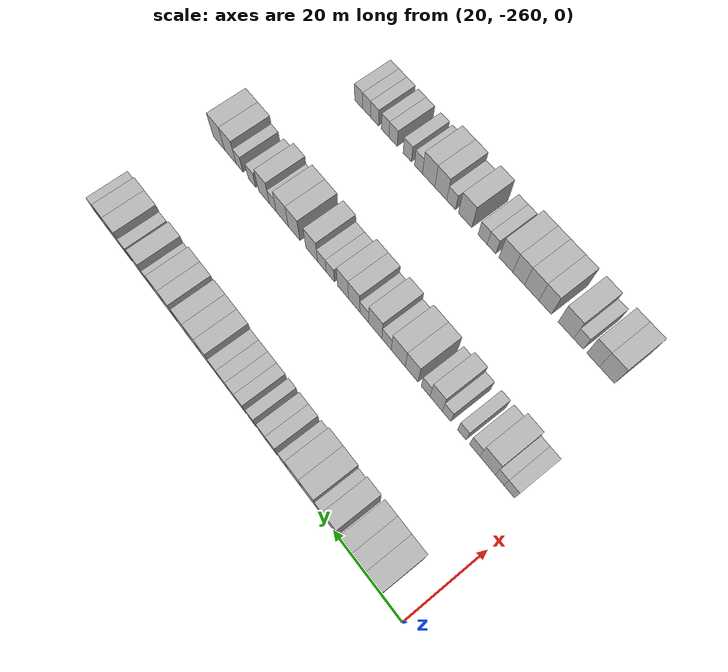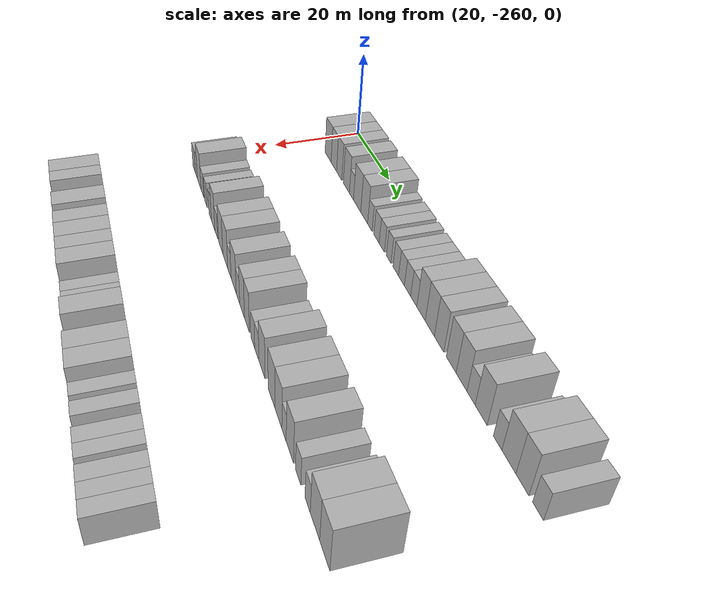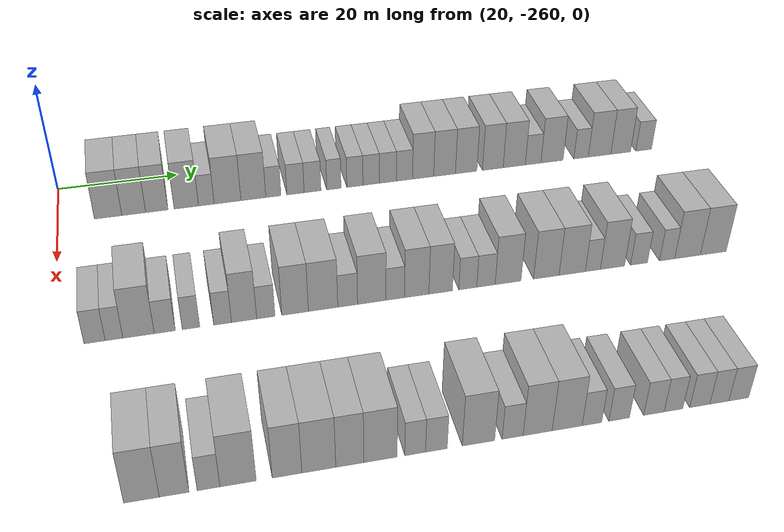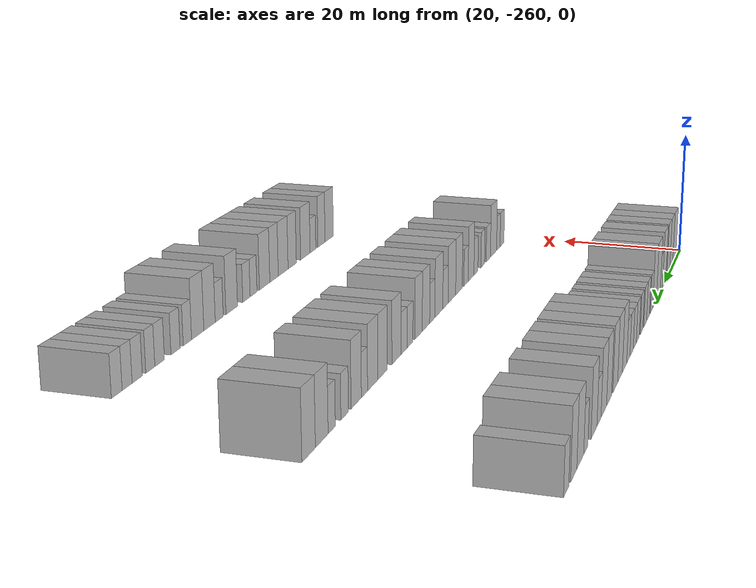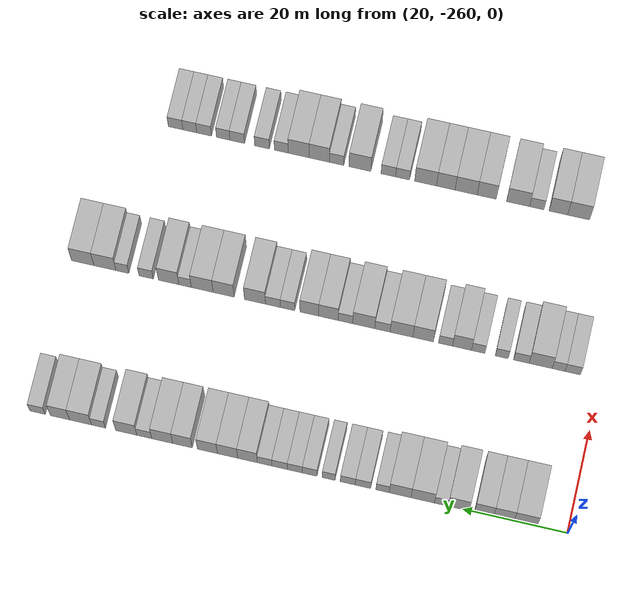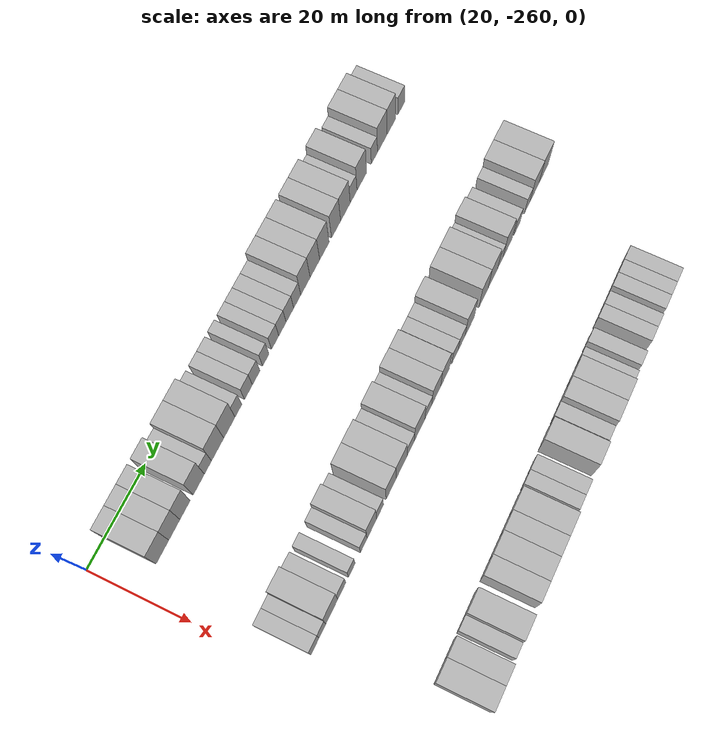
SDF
<sdf version="1.6">
 <world name="default">
  <model name="building_51">
   <static>1</static>
   <pose>25.0000 -251.9314 0 0.000000 0.000000 0.000000</pose>
   <link name="link">
    <pose>0 0 4.50 0 0 0</pose>
    <collision name="collision"><geometry><box><size>10.0000 4.3995 9.0000</size></box></geometry></collision>
    <visual name="visual">
     <cast_shadows>0</cast_shadows>
     <geometry><box><size>10.0000 4.3995 9.0000</size></box></geometry>
     <material>
      <script>
       <uri>model://HANNAS_wall/materials/scripts</uri>
       <uri>model://HANNAS_wall/materials/textures</uri>
       <name>vrc/HANNAS_wall</name>
      </script>
     </material>
    </visual>
   </link>
  </model>
  <model name="building_52">
   <static>1</static>
   <pose>25.0000 -247.8007 0 0.000000 0.000000 0.000000</pose>
   <link name="link">
    <pose>0 0 4.50 0 0 0</pose>
    <collision name="collision"><geometry><box><size>10.0000 3.8619 9.0000</size></box></geometry></collision>
    <visual name="visual">
     <cast_shadows>0</cast_shadows>
     <geometry><box><size>10.0000 3.8619 9.0000</size></box></geometry>
     <material>
      <script>
       <uri>model://HANNAS_wall/materials/scripts</uri>
       <uri>model://HANNAS_wall/materials/textures</uri>
       <name>vrc/HANNAS_wall</name>
      </script>
     </material>
    </visual>
   </link>
  </model>
  <model name="building_53">
   <static>1</static>
   <pose>25.0000 -244.0555 0 0.000000 0.000000 0.000000</pose>
   <link name="link">
    <pose>0 0 4.50 0 0 0</pose>
    <collision name="collision"><geometry><box><size>10.0000 3.6285 9.0000</size></box></geometry></collision>
    <visual name="visual">
     <cast_shadows>0</cast_shadows>
     <geometry><box><size>10.0000 3.6285 9.0000</size></box></geometry>
     <material>
      <script>
       <uri>model://HANNAS_wall/materials/scripts</uri>
       <uri>model://HANNAS_wall/materials/textures</uri>
       <name>vrc/HANNAS_wall</name>
      </script>
     </material>
    </visual>
   </link>
  </model>
  <model name="building_54">
   <static>1</static>
   <pose>25.0000 -239.2347 0 0.000000 0.000000 0.000000</pose>
   <link name="link">
    <pose>0 0 4.50 0 0 0</pose>
    <collision name="collision"><geometry><box><size>10.0000 4.0131 9.0000</size></box></geometry></collision>
    <visual name="visual">
     <cast_shadows>0</cast_shadows>
     <geometry><box><size>10.0000 4.0131 9.0000</size></box></geometry>
     <material>
      <script>
       <uri>model://HANNAS_wall/materials/scripts</uri>
       <uri>model://HANNAS_wall/materials/textures</uri>
       <name>vrc/HANNAS_wall</name>
      </script>
     </material>
    </visual>
   </link>
  </model>
  <model name="building_55">
   <static>1</static>
   <pose>25.0000 -235.9422 0 0.000000 0.000000 0.000000</pose>
   <link name="link">
    <pose>0 0 3.00 0 0 0</pose>
    <collision name="collision"><geometry><box><size>10.0000 2.5717 6.0000</size></box></geometry></collision>
    <visual name="visual">
     <cast_shadows>0</cast_shadows>
     <geometry><box><size>10.0000 2.5717 6.0000</size></box></geometry>
     <material>
      <script>
       <uri>model://HANNAS_wall/materials/scripts</uri>
       <uri>model://HANNAS_wall/materials/textures</uri>
       <name>vrc/HANNAS_wall</name>
      </script>
     </material>
    </visual>
   </link>
  </model>
  <model name="building_56">
   <static>1</static>
   <pose>25.0000 -232.4323 0 0.000000 0.000000 0.000000</pose>
   <link name="link">
    <pose>0 0 4.50 0 0 0</pose>
    <collision name="collision"><geometry><box><size>10.0000 4.4481 9.0000</size></box></geometry></collision>
    <visual name="visual">
     <cast_shadows>0</cast_shadows>
     <geometry><box><size>10.0000 4.4481 9.0000</size></box></geometry>
     <material>
      <script>
       <uri>model://HANNAS_wall/materials/scripts</uri>
       <uri>model://HANNAS_wall/materials/textures</uri>
       <name>vrc/HANNAS_wall</name>
      </script>
     </material>
    </visual>
   </link>
  </model>
  <model name="building_57">
   <static>1</static>
   <pose>25.0000 -228.1251 0 0.000000 0.000000 0.000000</pose>
   <link name="link">
    <pose>0 0 4.50 0 0 0</pose>
    <collision name="collision"><geometry><box><size>10.0000 4.1664 9.0000</size></box></geometry></collision>
    <visual name="visual">
     <cast_shadows>0</cast_shadows>
     <geometry><box><size>10.0000 4.1664 9.0000</size></box></geometry>
     <material>
      <script>
       <uri>model://HANNAS_wall/materials/scripts</uri>
       <uri>model://HANNAS_wall/materials/textures</uri>
       <name>vrc/HANNAS_wall</name>
      </script>
     </material>
    </visual>
   </link>
  </model>
  <model name="building_58">
   <static>1</static>
   <pose>25.0000 -224.7639 0 0.000000 0.000000 0.000000</pose>
   <link name="link">
    <pose>0 0 3.00 0 0 0</pose>
    <collision name="collision"><geometry><box><size>10.0000 2.5559 6.0000</size></box></geometry></collision>
    <visual name="visual">
     <cast_shadows>0</cast_shadows>
     <geometry><box><size>10.0000 2.5559 6.0000</size></box></geometry>
     <material>
      <script>
       <uri>model://HANNAS_wall/materials/scripts</uri>
       <uri>model://HANNAS_wall/materials/textures</uri>
       <name>vrc/HANNAS_wall</name>
      </script>
     </material>
    </visual>
   </link>
  </model>
  <model name="building_59">
   <static>1</static>
   <pose>25.0000 -221.0248 0 0.000000 0.000000 0.000000</pose>
   <link name="link">
    <pose>0 0 3.00 0 0 0</pose>
    <collision name="collision"><geometry><box><size>10.0000 2.9223 6.0000</size></box></geometry></collision>
    <visual name="visual">
     <cast_shadows>0</cast_shadows>
     <geometry><box><size>10.0000 2.9223 6.0000</size></box></geometry>
     <material>
      <script>
       <uri>model://HANNAS_wall/materials/scripts</uri>
       <uri>model://HANNAS_wall/materials/textures</uri>
       <name>vrc/HANNAS_wall</name>
      </script>
     </material>
    </visual>
   </link>
  </model>
  <model name="building_60">
   <static>1</static>
   <pose>25.0000 -218.1288 0 0.000000 0.000000 0.000000</pose>
   <link name="link">
    <pose>0 0 3.00 0 0 0</pose>
    <collision name="collision"><geometry><box><size>10.0000 2.8697 6.0000</size></box></geometry></collision>
    <visual name="visual">
     <cast_shadows>0</cast_shadows>
     <geometry><box><size>10.0000 2.8697 6.0000</size></box></geometry>
     <material>
      <script>
       <uri>model://HANNAS_wall/materials/scripts</uri>
       <uri>model://HANNAS_wall/materials/textures</uri>
       <name>vrc/HANNAS_wall</name>
      </script>
     </material>
    </visual>
   </link>
  </model>
  <model name="building_61">
   <static>1</static>
   <pose>25.0000 -214.4741 0 0.000000 0.000000 0.000000</pose>
   <link name="link">
    <pose>0 0 3.00 0 0 0</pose>
    <collision name="collision"><geometry><box><size>10.0000 2.4396 6.0000</size></box></geometry></collision>
    <visual name="visual">
     <cast_shadows>0</cast_shadows>
     <geometry><box><size>10.0000 2.4396 6.0000</size></box></geometry>
     <material>
      <script>
       <uri>model://HANNAS_wall/materials/scripts</uri>
       <uri>model://HANNAS_wall/materials/textures</uri>
       <name>vrc/HANNAS_wall</name>
      </script>
     </material>
    </visual>
   </link>
  </model>
  <model name="building_62">
   <static>1</static>
   <pose>25.0000 -210.8587 0 0.000000 0.000000 0.000000</pose>
   <link name="link">
    <pose>0 0 3.00 0 0 0</pose>
    <collision name="collision"><geometry><box><size>10.0000 2.7912 6.0000</size></box></geometry></collision>
    <visual name="visual">
     <cast_shadows>0</cast_shadows>
     <geometry><box><size>10.0000 2.7912 6.0000</size></box></geometry>
     <material>
      <script>
       <uri>model://HANNAS_wall/materials/scripts</uri>
       <uri>model://HANNAS_wall/materials/textures</uri>
       <name>vrc/HANNAS_wall</name>
      </script>
     </material>
    </visual>
   </link>
  </model>
  <model name="building_63">
   <static>1</static>
   <pose>25.0000 -208.0365 0 0.000000 0.000000 0.000000</pose>
   <link name="link">
    <pose>0 0 3.00 0 0 0</pose>
    <collision name="collision"><geometry><box><size>10.0000 2.8532 6.0000</size></box></geometry></collision>
    <visual name="visual">
     <cast_shadows>0</cast_shadows>
     <geometry><box><size>10.0000 2.8532 6.0000</size></box></geometry>
     <material>
      <script>
       <uri>model://HANNAS_wall/materials/scripts</uri>
       <uri>model://HANNAS_wall/materials/textures</uri>
       <name>vrc/HANNAS_wall</name>
      </script>
     </material>
    </visual>
   </link>
  </model>
  <model name="building_64">
   <static>1</static>
   <pose>25.0000 -205.1296 0 0.000000 0.000000 0.000000</pose>
   <link name="link">
    <pose>0 0 3.00 0 0 0</pose>
    <collision name="collision"><geometry><box><size>10.0000 2.9607 6.0000</size></box></geometry></collision>
    <visual name="visual">
     <cast_shadows>0</cast_shadows>
     <geometry><box><size>10.0000 2.9607 6.0000</size></box></geometry>
     <material>
      <script>
       <uri>model://HANNAS_wall/materials/scripts</uri>
       <uri>model://HANNAS_wall/materials/textures</uri>
       <name>vrc/HANNAS_wall</name>
      </script>
     </material>
    </visual>
   </link>
  </model>
  <model name="building_65">
   <static>1</static>
   <pose>25.0000 -202.2371 0 0.000000 0.000000 0.000000</pose>
   <link name="link">
    <pose>0 0 3.00 0 0 0</pose>
    <collision name="collision"><geometry><box><size>10.0000 2.8243 6.0000</size></box></geometry></collision>
    <visual name="visual">
     <cast_shadows>0</cast_shadows>
     <geometry><box><size>10.0000 2.8243 6.0000</size></box></geometry>
     <material>
      <script>
       <uri>model://HANNAS_wall/materials/scripts</uri>
       <uri>model://HANNAS_wall/materials/textures</uri>
       <name>vrc/HANNAS_wall</name>
      </script>
     </material>
    </visual>
   </link>
  </model>
  <model name="building_66">
   <static>1</static>
   <pose>25.0000 -198.9502 0 0.000000 0.000000 0.000000</pose>
   <link name="link">
    <pose>0 0 4.50 0 0 0</pose>
    <collision name="collision"><geometry><box><size>10.0000 3.7495 9.0000</size></box></geometry></collision>
    <visual name="visual">
     <cast_shadows>0</cast_shadows>
     <geometry><box><size>10.0000 3.7495 9.0000</size></box></geometry>
     <material>
      <script>
       <uri>model://HANNAS_wall/materials/scripts</uri>
       <uri>model://HANNAS_wall/materials/textures</uri>
       <name>vrc/HANNAS_wall</name>
      </script>
     </material>
    </visual>
   </link>
  </model>
  <model name="building_67">
   <static>1</static>
   <pose>25.0000 -195.1428 0 0.000000 0.000000 0.000000</pose>
   <link name="link">
    <pose>0 0 4.50 0 0 0</pose>
    <collision name="collision"><geometry><box><size>10.0000 3.8651 9.0000</size></box></geometry></collision>
    <visual name="visual">
     <cast_shadows>0</cast_shadows>
     <geometry><box><size>10.0000 3.8651 9.0000</size></box></geometry>
     <material>
      <script>
       <uri>model://HANNAS_wall/materials/scripts</uri>
       <uri>model://HANNAS_wall/materials/textures</uri>
       <name>vrc/HANNAS_wall</name>
      </script>
     </material>
    </visual>
   </link>
  </model>
  <model name="building_68">
   <static>1</static>
   <pose>25.0000 -191.2908 0 0.000000 0.000000 0.000000</pose>
   <link name="link">
    <pose>0 0 4.50 0 0 0</pose>
    <collision name="collision"><geometry><box><size>10.0000 3.8390 9.0000</size></box></geometry></collision>
    <visual name="visual">
     <cast_shadows>0</cast_shadows>
     <geometry><box><size>10.0000 3.8390 9.0000</size></box></geometry>
     <material>
      <script>
       <uri>model://HANNAS_wall/materials/scripts</uri>
       <uri>model://HANNAS_wall/materials/textures</uri>
       <name>vrc/HANNAS_wall</name>
      </script>
     </material>
    </visual>
   </link>
  </model>
  <model name="building_69">
   <static>1</static>
   <pose>25.0000 -186.4978 0 0.000000 0.000000 0.000000</pose>
   <link name="link">
    <pose>0 0 4.50 0 0 0</pose>
    <collision name="collision"><geometry><box><size>10.0000 3.7471 9.0000</size></box></geometry></collision>
    <visual name="visual">
     <cast_shadows>0</cast_shadows>
     <geometry><box><size>10.0000 3.7471 9.0000</size></box></geometry>
     <material>
      <script>
       <uri>model://HANNAS_wall/materials/scripts</uri>
       <uri>model://HANNAS_wall/materials/textures</uri>
       <name>vrc/HANNAS_wall</name>
      </script>
     </material>
    </visual>
   </link>
  </model>
  <model name="building_70">
   <static>1</static>
   <pose>25.0000 -182.6161 0 0.000000 0.000000 0.000000</pose>
   <link name="link">
    <pose>0 0 4.50 0 0 0</pose>
    <collision name="collision"><geometry><box><size>10.0000 4.0163 9.0000</size></box></geometry></collision>
    <visual name="visual">
     <cast_shadows>0</cast_shadows>
     <geometry><box><size>10.0000 4.0163 9.0000</size></box></geometry>
     <material>
      <script>
       <uri>model://HANNAS_wall/materials/scripts</uri>
       <uri>model://HANNAS_wall/materials/textures</uri>
       <name>vrc/HANNAS_wall</name>
      </script>
     </material>
    </visual>
   </link>
  </model>
  <model name="building_71">
   <static>1</static>
   <pose>25.0000 -179.1784 0 0.000000 0.000000 0.000000</pose>
   <link name="link">
    <pose>0 0 3.00 0 0 0</pose>
    <collision name="collision"><geometry><box><size>10.0000 2.8589 6.0000</size></box></geometry></collision>
    <visual name="visual">
     <cast_shadows>0</cast_shadows>
     <geometry><box><size>10.0000 2.8589 6.0000</size></box></geometry>
     <material>
      <script>
       <uri>model://HANNAS_wall/materials/scripts</uri>
       <uri>model://HANNAS_wall/materials/textures</uri>
       <name>vrc/HANNAS_wall</name>
      </script>
     </material>
    </visual>
   </link>
  </model>
  <model name="building_72">
   <static>1</static>
   <pose>25.0000 -175.7146 0 0.000000 0.000000 0.000000</pose>
   <link name="link">
    <pose>0 0 4.50 0 0 0</pose>
    <collision name="collision"><geometry><box><size>10.0000 4.0687 9.0000</size></box></geometry></collision>
    <visual name="visual">
     <cast_shadows>0</cast_shadows>
     <geometry><box><size>10.0000 4.0687 9.0000</size></box></geometry>
     <material>
      <script>
       <uri>model://HANNAS_wall/materials/scripts</uri>
       <uri>model://HANNAS_wall/materials/textures</uri>
       <name>vrc/HANNAS_wall</name>
      </script>
     </material>
    </visual>
   </link>
  </model>
  <model name="building_73">
   <static>1</static>
   <pose>25.0000 -170.3398 0 0.000000 0.000000 0.000000</pose>
   <link name="link">
    <pose>0 0 3.00 0 0 0</pose>
    <collision name="collision"><geometry><box><size>10.0000 2.6811 6.0000</size></box></geometry></collision>
    <visual name="visual">
     <cast_shadows>0</cast_shadows>
     <geometry><box><size>10.0000 2.6811 6.0000</size></box></geometry>
     <material>
      <script>
       <uri>model://HANNAS_wall/materials/scripts</uri>
       <uri>model://HANNAS_wall/materials/textures</uri>
       <name>vrc/HANNAS_wall</name>
      </script>
     </material>
    </visual>
   </link>
  </model>
  <model name="building_74">
   <static>1</static>
   <pose>25.0000 -166.8912 0 0.000000 0.000000 0.000000</pose>
   <link name="link">
    <pose>0 0 4.50 0 0 0</pose>
    <collision name="collision"><geometry><box><size>10.0000 4.2160 9.0000</size></box></geometry></collision>
    <visual name="visual">
     <cast_shadows>0</cast_shadows>
     <geometry><box><size>10.0000 4.2160 9.0000</size></box></geometry>
     <material>
      <script>
       <uri>model://HANNAS_wall/materials/scripts</uri>
       <uri>model://HANNAS_wall/materials/textures</uri>
       <name>vrc/HANNAS_wall</name>
      </script>
     </material>
    </visual>
   </link>
  </model>
  <model name="building_75">
   <static>1</static>
   <pose>25.0000 -162.9274 0 0.000000 0.000000 0.000000</pose>
   <link name="link">
    <pose>0 0 4.50 0 0 0</pose>
    <collision name="collision"><geometry><box><size>10.0000 3.7117 9.0000</size></box></geometry></collision>
    <visual name="visual">
     <cast_shadows>0</cast_shadows>
     <geometry><box><size>10.0000 3.7117 9.0000</size></box></geometry>
     <material>
      <script>
       <uri>model://HANNAS_wall/materials/scripts</uri>
       <uri>model://HANNAS_wall/materials/textures</uri>
       <name>vrc/HANNAS_wall</name>
      </script>
     </material>
    </visual>
   </link>
  </model>
  <model name="building_76">
   <static>1</static>
   <pose>25.0000 -158.5888 0 0.000000 0.000000 0.000000</pose>
   <link name="link">
    <pose>0 0 3.00 0 0 0</pose>
    <collision name="collision"><geometry><box><size>10.0000 2.9657 6.0000</size></box></geometry></collision>
    <visual name="visual">
     <cast_shadows>0</cast_shadows>
     <geometry><box><size>10.0000 2.9657 6.0000</size></box></geometry>
     <material>
      <script>
       <uri>model://HANNAS_wall/materials/scripts</uri>
       <uri>model://HANNAS_wall/materials/textures</uri>
       <name>vrc/HANNAS_wall</name>
      </script>
     </material>
    </visual>
   </link>
  </model>
  <model name="building_274">
   <static>1</static>
   <pose>55.0000 -254.6110 0 0.000000 0.000000 0.000000</pose>
   <link name="link">
    <pose>0 0 3.00 0 0 0</pose>
    <collision name="collision"><geometry><box><size>10.0000 2.9476 6.0000</size></box></geometry></collision>
    <visual name="visual">
     <cast_shadows>0</cast_shadows>
     <geometry><box><size>10.0000 2.9476 6.0000</size></box></geometry>
     <material>
      <script>
       <uri>model://HANNAS_wall/materials/scripts</uri>
       <uri>model://HANNAS_wall/materials/textures</uri>
       <name>vrc/HANNAS_wall</name>
      </script>
     </material>
    </visual>
   </link>
  </model>
  <model name="building_275">
   <static>1</static>
   <pose>55.0000 -251.8959 0 0.000000 0.000000 0.000000</pose>
   <link name="link">
    <pose>0 0 3.00 0 0 0</pose>
    <collision name="collision"><geometry><box><size>10.0000 2.4827 6.0000</size></box></geometry></collision>
    <visual name="visual">
     <cast_shadows>0</cast_shadows>
     <geometry><box><size>10.0000 2.4827 6.0000</size></box></geometry>
     <material>
      <script>
       <uri>model://HANNAS_wall/materials/scripts</uri>
       <uri>model://HANNAS_wall/materials/textures</uri>
       <name>vrc/HANNAS_wall</name>
      </script>
     </material>
    </visual>
   </link>
  </model>
  <model name="building_276">
   <static>1</static>
   <pose>55.0000 -248.4401 0 0.000000 0.000000 0.000000</pose>
   <link name="link">
    <pose>0 0 4.50 0 0 0</pose>
    <collision name="collision"><geometry><box><size>10.0000 4.4289 9.0000</size></box></geometry></collision>
    <visual name="visual">
     <cast_shadows>0</cast_shadows>
     <geometry><box><size>10.0000 4.4289 9.0000</size></box></geometry>
     <material>
      <script>
       <uri>model://HANNAS_wall/materials/scripts</uri>
       <uri>model://HANNAS_wall/materials/textures</uri>
       <name>vrc/HANNAS_wall</name>
      </script>
     </material>
    </visual>
   </link>
  </model>
  <model name="building_277">
   <static>1</static>
   <pose>55.0000 -244.7334 0 0.000000 0.000000 0.000000</pose>
   <link name="link">
    <pose>0 0 3.00 0 0 0</pose>
    <collision name="collision"><geometry><box><size>10.0000 2.9844 6.0000</size></box></geometry></collision>
    <visual name="visual">
     <cast_shadows>0</cast_shadows>
     <geometry><box><size>10.0000 2.9844 6.0000</size></box></geometry>
     <material>
      <script>
       <uri>model://HANNAS_wall/materials/scripts</uri>
       <uri>model://HANNAS_wall/materials/textures</uri>
       <name>vrc/HANNAS_wall</name>
      </script>
     </material>
    </visual>
   </link>
  </model>
  <model name="building_278">
   <static>1</static>
   <pose>55.0000 -240.9865 0 0.000000 0.000000 0.000000</pose>
   <link name="link">
    <pose>0 0 3.00 0 0 0</pose>
    <collision name="collision"><geometry><box><size>10.0000 2.5095 6.0000</size></box></geometry></collision>
    <visual name="visual">
     <cast_shadows>0</cast_shadows>
     <geometry><box><size>10.0000 2.5095 6.0000</size></box></geometry>
     <material>
      <script>
       <uri>model://HANNAS_wall/materials/scripts</uri>
       <uri>model://HANNAS_wall/materials/textures</uri>
       <name>vrc/HANNAS_wall</name>
      </script>
     </material>
    </visual>
   </link>
  </model>
  <model name="building_279">
   <static>1</static>
   <pose>55.0000 -236.4467 0 0.000000 0.000000 0.000000</pose>
   <link name="link">
    <pose>0 0 3.00 0 0 0</pose>
    <collision name="collision"><geometry><box><size>10.0000 2.5700 6.0000</size></box></geometry></collision>
    <visual name="visual">
     <cast_shadows>0</cast_shadows>
     <geometry><box><size>10.0000 2.5700 6.0000</size></box></geometry>
     <material>
      <script>
       <uri>model://HANNAS_wall/materials/scripts</uri>
       <uri>model://HANNAS_wall/materials/textures</uri>
       <name>vrc/HANNAS_wall</name>
      </script>
     </material>
    </visual>
   </link>
  </model>
  <model name="building_280">
   <static>1</static>
   <pose>55.0000 -233.3254 0 0.000000 0.000000 0.000000</pose>
   <link name="link">
    <pose>0 0 4.50 0 0 0</pose>
    <collision name="collision"><geometry><box><size>10.0000 3.6726 9.0000</size></box></geometry></collision>
    <visual name="visual">
     <cast_shadows>0</cast_shadows>
     <geometry><box><size>10.0000 3.6726 9.0000</size></box></geometry>
     <material>
      <script>
       <uri>model://HANNAS_wall/materials/scripts</uri>
       <uri>model://HANNAS_wall/materials/textures</uri>
       <name>vrc/HANNAS_wall</name>
      </script>
     </material>
    </visual>
   </link>
  </model>
  <model name="building_281">
   <static>1</static>
   <pose>55.0000 -230.1465 0 0.000000 0.000000 0.000000</pose>
   <link name="link">
    <pose>0 0 3.00 0 0 0</pose>
    <collision name="collision"><geometry><box><size>10.0000 2.6851 6.0000</size></box></geometry></collision>
    <visual name="visual">
     <cast_shadows>0</cast_shadows>
     <geometry><box><size>10.0000 2.6851 6.0000</size></box></geometry>
     <material>
      <script>
       <uri>model://HANNAS_wall/materials/scripts</uri>
       <uri>model://HANNAS_wall/materials/textures</uri>
       <name>vrc/HANNAS_wall</name>
      </script>
     </material>
    </visual>
   </link>
  </model>
  <model name="building_282">
   <static>1</static>
   <pose>55.0000 -225.8391 0 0.000000 0.000000 0.000000</pose>
   <link name="link">
    <pose>0 0 4.50 0 0 0</pose>
    <collision name="collision"><geometry><box><size>10.0000 3.9297 9.0000</size></box></geometry></collision>
    <visual name="visual">
     <cast_shadows>0</cast_shadows>
     <geometry><box><size>10.0000 3.9297 9.0000</size></box></geometry>
     <material>
      <script>
       <uri>model://HANNAS_wall/materials/scripts</uri>
       <uri>model://HANNAS_wall/materials/textures</uri>
       <name>vrc/HANNAS_wall</name>
      </script>
     </material>
    </visual>
   </link>
  </model>
  <model name="building_283">
   <static>1</static>
   <pose>55.0000 -221.6827 0 0.000000 0.000000 0.000000</pose>
   <link name="link">
    <pose>0 0 4.50 0 0 0</pose>
    <collision name="collision"><geometry><box><size>10.0000 4.3831 9.0000</size></box></geometry></collision>
    <visual name="visual">
     <cast_shadows>0</cast_shadows>
     <geometry><box><size>10.0000 4.3831 9.0000</size></box></geometry>
     <material>
      <script>
       <uri>model://HANNAS_wall/materials/scripts</uri>
       <uri>model://HANNAS_wall/materials/textures</uri>
       <name>vrc/HANNAS_wall</name>
      </script>
     </material>
    </visual>
   </link>
  </model>
  <model name="building_284">
   <static>1</static>
   <pose>55.0000 -218.0028 0 0.000000 0.000000 0.000000</pose>
   <link name="link">
    <pose>0 0 3.00 0 0 0</pose>
    <collision name="collision"><geometry><box><size>10.0000 2.9768 6.0000</size></box></geometry></collision>
    <visual name="visual">
     <cast_shadows>0</cast_shadows>
     <geometry><box><size>10.0000 2.9768 6.0000</size></box></geometry>
     <material>
      <script>
       <uri>model://HANNAS_wall/materials/scripts</uri>
       <uri>model://HANNAS_wall/materials/textures</uri>
       <name>vrc/HANNAS_wall</name>
      </script>
     </material>
    </visual>
   </link>
  </model>
  <model name="building_285">
   <static>1</static>
   <pose>55.0000 -214.3701 0 0.000000 0.000000 0.000000</pose>
   <link name="link">
    <pose>0 0 4.50 0 0 0</pose>
    <collision name="collision"><geometry><box><size>10.0000 4.2885 9.0000</size></box></geometry></collision>
    <visual name="visual">
     <cast_shadows>0</cast_shadows>
     <geometry><box><size>10.0000 4.2885 9.0000</size></box></geometry>
     <material>
      <script>
       <uri>model://HANNAS_wall/materials/scripts</uri>
       <uri>model://HANNAS_wall/materials/textures</uri>
       <name>vrc/HANNAS_wall</name>
      </script>
     </material>
    </visual>
   </link>
  </model>
  <model name="building_286">
   <static>1</static>
   <pose>55.0000 -210.8189 0 0.000000 0.000000 0.000000</pose>
   <link name="link">
    <pose>0 0 3.00 0 0 0</pose>
    <collision name="collision"><geometry><box><size>10.0000 2.8139 6.0000</size></box></geometry></collision>
    <visual name="visual">
     <cast_shadows>0</cast_shadows>
     <geometry><box><size>10.0000 2.8139 6.0000</size></box></geometry>
     <material>
      <script>
       <uri>model://HANNAS_wall/materials/scripts</uri>
       <uri>model://HANNAS_wall/materials/textures</uri>
       <name>vrc/HANNAS_wall</name>
      </script>
     </material>
    </visual>
   </link>
  </model>
  <model name="building_287">
   <static>1</static>
   <pose>55.0000 -207.5324 0 0.000000 0.000000 0.000000</pose>
   <link name="link">
    <pose>0 0 4.50 0 0 0</pose>
    <collision name="collision"><geometry><box><size>10.0000 3.7590 9.0000</size></box></geometry></collision>
    <visual name="visual">
     <cast_shadows>0</cast_shadows>
     <geometry><box><size>10.0000 3.7590 9.0000</size></box></geometry>
     <material>
      <script>
       <uri>model://HANNAS_wall/materials/scripts</uri>
       <uri>model://HANNAS_wall/materials/textures</uri>
       <name>vrc/HANNAS_wall</name>
      </script>
     </material>
    </visual>
   </link>
  </model>
  <model name="building_288">
   <static>1</static>
   <pose>55.0000 -203.8290 0 0.000000 0.000000 0.000000</pose>
   <link name="link">
    <pose>0 0 4.50 0 0 0</pose>
    <collision name="collision"><geometry><box><size>10.0000 3.6477 9.0000</size></box></geometry></collision>
    <visual name="visual">
     <cast_shadows>0</cast_shadows>
     <geometry><box><size>10.0000 3.6477 9.0000</size></box></geometry>
     <material>
      <script>
       <uri>model://HANNAS_wall/materials/scripts</uri>
       <uri>model://HANNAS_wall/materials/textures</uri>
       <name>vrc/HANNAS_wall</name>
      </script>
     </material>
    </visual>
   </link>
  </model>
  <model name="building_289">
   <static>1</static>
   <pose>55.0000 -199.6082 0 0.000000 0.000000 0.000000</pose>
   <link name="link">
    <pose>0 0 3.00 0 0 0</pose>
    <collision name="collision"><geometry><box><size>10.0000 2.7939 6.0000</size></box></geometry></collision>
    <visual name="visual">
     <cast_shadows>0</cast_shadows>
     <geometry><box><size>10.0000 2.7939 6.0000</size></box></geometry>
     <material>
      <script>
       <uri>model://HANNAS_wall/materials/scripts</uri>
       <uri>model://HANNAS_wall/materials/textures</uri>
       <name>vrc/HANNAS_wall</name>
      </script>
     </material>
    </visual>
   </link>
  </model>
  <model name="building_290">
   <static>1</static>
   <pose>55.0000 -196.7632 0 0.000000 0.000000 0.000000</pose>
   <link name="link">
    <pose>0 0 3.00 0 0 0</pose>
    <collision name="collision"><geometry><box><size>10.0000 2.8962 6.0000</size></box></geometry></collision>
    <visual name="visual">
     <cast_shadows>0</cast_shadows>
     <geometry><box><size>10.0000 2.8962 6.0000</size></box></geometry>
     <material>
      <script>
       <uri>model://HANNAS_wall/materials/scripts</uri>
       <uri>model://HANNAS_wall/materials/textures</uri>
       <name>vrc/HANNAS_wall</name>
      </script>
     </material>
    </visual>
   </link>
  </model>
  <model name="building_291">
   <static>1</static>
   <pose>55.0000 -193.2758 0 0.000000 0.000000 0.000000</pose>
   <link name="link">
    <pose>0 0 4.50 0 0 0</pose>
    <collision name="collision"><geometry><box><size>10.0000 4.0788 9.0000</size></box></geometry></collision>
    <visual name="visual">
     <cast_shadows>0</cast_shadows>
     <geometry><box><size>10.0000 4.0788 9.0000</size></box></geometry>
     <material>
      <script>
       <uri>model://HANNAS_wall/materials/scripts</uri>
       <uri>model://HANNAS_wall/materials/textures</uri>
       <name>vrc/HANNAS_wall</name>
      </script>
     </material>
    </visual>
   </link>
  </model>
  <model name="building_292">
   <static>1</static>
   <pose>55.0000 -187.1910 0 0.000000 0.000000 0.000000</pose>
   <link name="link">
    <pose>0 0 4.50 0 0 0</pose>
    <collision name="collision"><geometry><box><size>10.0000 4.0907 9.0000</size></box></geometry></collision>
    <visual name="visual">
     <cast_shadows>0</cast_shadows>
     <geometry><box><size>10.0000 4.0907 9.0000</size></box></geometry>
     <material>
      <script>
       <uri>model://HANNAS_wall/materials/scripts</uri>
       <uri>model://HANNAS_wall/materials/textures</uri>
       <name>vrc/HANNAS_wall</name>
      </script>
     </material>
    </visual>
   </link>
  </model>
  <model name="building_293">
   <static>1</static>
   <pose>55.0000 -183.0299 0 0.000000 0.000000 0.000000</pose>
   <link name="link">
    <pose>0 0 4.50 0 0 0</pose>
    <collision name="collision"><geometry><box><size>10.0000 4.2316 9.0000</size></box></geometry></collision>
    <visual name="visual">
     <cast_shadows>0</cast_shadows>
     <geometry><box><size>10.0000 4.2316 9.0000</size></box></geometry>
     <material>
      <script>
       <uri>model://HANNAS_wall/materials/scripts</uri>
       <uri>model://HANNAS_wall/materials/textures</uri>
       <name>vrc/HANNAS_wall</name>
      </script>
     </material>
    </visual>
   </link>
  </model>
  <model name="building_294">
   <static>1</static>
   <pose>55.0000 -179.6941 0 0.000000 0.000000 0.000000</pose>
   <link name="link">
    <pose>0 0 3.00 0 0 0</pose>
    <collision name="collision"><geometry><box><size>10.0000 2.4400 6.0000</size></box></geometry></collision>
    <visual name="visual">
     <cast_shadows>0</cast_shadows>
     <geometry><box><size>10.0000 2.4400 6.0000</size></box></geometry>
     <material>
      <script>
       <uri>model://HANNAS_wall/materials/scripts</uri>
       <uri>model://HANNAS_wall/materials/textures</uri>
       <name>vrc/HANNAS_wall</name>
      </script>
     </material>
    </visual>
   </link>
  </model>
  <model name="building_295">
   <static>1</static>
   <pose>55.0000 -176.4917 0 0.000000 0.000000 0.000000</pose>
   <link name="link">
    <pose>0 0 4.50 0 0 0</pose>
    <collision name="collision"><geometry><box><size>10.0000 3.9649 9.0000</size></box></geometry></collision>
    <visual name="visual">
     <cast_shadows>0</cast_shadows>
     <geometry><box><size>10.0000 3.9649 9.0000</size></box></geometry>
     <material>
      <script>
       <uri>model://HANNAS_wall/materials/scripts</uri>
       <uri>model://HANNAS_wall/materials/textures</uri>
       <name>vrc/HANNAS_wall</name>
      </script>
     </material>
    </visual>
   </link>
  </model>
  <model name="building_296">
   <static>1</static>
   <pose>55.0000 -172.1201 0 0.000000 0.000000 0.000000</pose>
   <link name="link">
    <pose>0 0 3.00 0 0 0</pose>
    <collision name="collision"><geometry><box><size>10.0000 2.7783 6.0000</size></box></geometry></collision>
    <visual name="visual">
     <cast_shadows>0</cast_shadows>
     <geometry><box><size>10.0000 2.7783 6.0000</size></box></geometry>
     <material>
      <script>
       <uri>model://HANNAS_wall/materials/scripts</uri>
       <uri>model://HANNAS_wall/materials/textures</uri>
       <name>vrc/HANNAS_wall</name>
      </script>
     </material>
    </visual>
   </link>
  </model>
  <model name="building_297">
   <static>1</static>
   <pose>55.0000 -167.4706 0 0.000000 0.000000 0.000000</pose>
   <link name="link">
    <pose>0 0 3.00 0 0 0</pose>
    <collision name="collision"><geometry><box><size>10.0000 2.5206 6.0000</size></box></geometry></collision>
    <visual name="visual">
     <cast_shadows>0</cast_shadows>
     <geometry><box><size>10.0000 2.5206 6.0000</size></box></geometry>
     <material>
      <script>
       <uri>model://HANNAS_wall/materials/scripts</uri>
       <uri>model://HANNAS_wall/materials/textures</uri>
       <name>vrc/HANNAS_wall</name>
      </script>
     </material>
    </visual>
   </link>
  </model>
  <model name="building_298">
   <static>1</static>
   <pose>55.0000 -164.0589 0 0.000000 0.000000 0.000000</pose>
   <link name="link">
    <pose>0 0 4.50 0 0 0</pose>
    <collision name="collision"><geometry><box><size>10.0000 4.3030 9.0000</size></box></geometry></collision>
    <visual name="visual">
     <cast_shadows>0</cast_shadows>
     <geometry><box><size>10.0000 4.3030 9.0000</size></box></geometry>
     <material>
      <script>
       <uri>model://HANNAS_wall/materials/scripts</uri>
       <uri>model://HANNAS_wall/materials/textures</uri>
       <name>vrc/HANNAS_wall</name>
      </script>
     </material>
    </visual>
   </link>
  </model>
  <model name="building_299">
   <static>1</static>
   <pose>55.0000 -159.7224 0 0.000000 0.000000 0.000000</pose>
   <link name="link">
    <pose>0 0 4.50 0 0 0</pose>
    <collision name="collision"><geometry><box><size>10.0000 4.3701 9.0000</size></box></geometry></collision>
    <visual name="visual">
     <cast_shadows>0</cast_shadows>
     <geometry><box><size>10.0000 4.3701 9.0000</size></box></geometry>
     <material>
      <script>
       <uri>model://HANNAS_wall/materials/scripts</uri>
       <uri>model://HANNAS_wall/materials/textures</uri>
       <name>vrc/HANNAS_wall</name>
      </script>
     </material>
    </visual>
   </link>
  </model>
  <model name="building_490">
   <static>1</static>
   <pose>85.0000 -249.5039 0 0.000000 0.000000 0.000000</pose>
   <link name="link">
    <pose>0 0 4.50 0 0 0</pose>
    <collision name="collision"><geometry><box><size>10.0000 4.2958 9.0000</size></box></geometry></collision>
    <visual name="visual">
     <cast_shadows>0</cast_shadows>
     <geometry><box><size>10.0000 4.2958 9.0000</size></box></geometry>
     <material>
      <script>
       <uri>model://HANNAS_wall/materials/scripts</uri>
       <uri>model://HANNAS_wall/materials/textures</uri>
       <name>vrc/HANNAS_wall</name>
      </script>
     </material>
    </visual>
   </link>
  </model>
  <model name="building_491">
   <static>1</static>
   <pose>85.0000 -245.5541 0 0.000000 0.000000 0.000000</pose>
   <link name="link">
    <pose>0 0 4.50 0 0 0</pose>
    <collision name="collision"><geometry><box><size>10.0000 3.6037 9.0000</size></box></geometry></collision>
    <visual name="visual">
     <cast_shadows>0</cast_shadows>
     <geometry><box><size>10.0000 3.6037 9.0000</size></box></geometry>
     <material>
      <script>
       <uri>model://HANNAS_wall/materials/scripts</uri>
       <uri>model://HANNAS_wall/materials/textures</uri>
       <name>vrc/HANNAS_wall</name>
      </script>
     </material>
    </visual>
   </link>
  </model>
  <model name="building_492">
   <static>1</static>
   <pose>85.0000 -241.3533 0 0.000000 0.000000 0.000000</pose>
   <link name="link">
    <pose>0 0 3.00 0 0 0</pose>
    <collision name="collision"><geometry><box><size>10.0000 2.7980 6.0000</size></box></geometry></collision>
    <visual name="visual">
     <cast_shadows>0</cast_shadows>
     <geometry><box><size>10.0000 2.7980 6.0000</size></box></geometry>
     <material>
      <script>
       <uri>model://HANNAS_wall/materials/scripts</uri>
       <uri>model://HANNAS_wall/materials/textures</uri>
       <name>vrc/HANNAS_wall</name>
      </script>
     </material>
    </visual>
   </link>
  </model>
  <model name="building_493">
   <static>1</static>
   <pose>85.0000 -237.7078 0 0.000000 0.000000 0.000000</pose>
   <link name="link">
    <pose>0 0 4.50 0 0 0</pose>
    <collision name="collision"><geometry><box><size>10.0000 4.4930 9.0000</size></box></geometry></collision>
    <visual name="visual">
     <cast_shadows>0</cast_shadows>
     <geometry><box><size>10.0000 4.4930 9.0000</size></box></geometry>
     <material>
      <script>
       <uri>model://HANNAS_wall/materials/scripts</uri>
       <uri>model://HANNAS_wall/materials/textures</uri>
       <name>vrc/HANNAS_wall</name>
      </script>
     </material>
    </visual>
   </link>
  </model>
  <model name="building_494">
   <static>1</static>
   <pose>85.0000 -231.5979 0 0.000000 0.000000 0.000000</pose>
   <link name="link">
    <pose>0 0 4.50 0 0 0</pose>
    <collision name="collision"><geometry><box><size>10.0000 3.7266 9.0000</size></box></geometry></collision>
    <visual name="visual">
     <cast_shadows>0</cast_shadows>
     <geometry><box><size>10.0000 3.7266 9.0000</size></box></geometry>
     <material>
      <script>
       <uri>model://HANNAS_wall/materials/scripts</uri>
       <uri>model://HANNAS_wall/materials/textures</uri>
       <name>vrc/HANNAS_wall</name>
      </script>
     </material>
    </visual>
   </link>
  </model>
  <model name="building_495">
   <static>1</static>
   <pose>85.0000 -227.5817 0 0.000000 0.000000 0.000000</pose>
   <link name="link">
    <pose>0 0 4.50 0 0 0</pose>
    <collision name="collision"><geometry><box><size>10.0000 4.3058 9.0000</size></box></geometry></collision>
    <visual name="visual">
     <cast_shadows>0</cast_shadows>
     <geometry><box><size>10.0000 4.3058 9.0000</size></box></geometry>
     <material>
      <script>
       <uri>model://HANNAS_wall/materials/scripts</uri>
       <uri>model://HANNAS_wall/materials/textures</uri>
       <name>vrc/HANNAS_wall</name>
      </script>
     </material>
    </visual>
   </link>
  </model>
  <model name="building_496">
   <static>1</static>
   <pose>85.0000 -223.6189 0 0.000000 0.000000 0.000000</pose>
   <link name="link">
    <pose>0 0 4.50 0 0 0</pose>
    <collision name="collision"><geometry><box><size>10.0000 3.6197 9.0000</size></box></geometry></collision>
    <visual name="visual">
     <cast_shadows>0</cast_shadows>
     <geometry><box><size>10.0000 3.6197 9.0000</size></box></geometry>
     <material>
      <script>
       <uri>model://HANNAS_wall/materials/scripts</uri>
       <uri>model://HANNAS_wall/materials/textures</uri>
       <name>vrc/HANNAS_wall</name>
      </script>
     </material>
    </visual>
   </link>
  </model>
  <model name="building_497">
   <static>1</static>
   <pose>85.0000 -219.6638 0 0.000000 0.000000 0.000000</pose>
   <link name="link">
    <pose>0 0 4.50 0 0 0</pose>
    <collision name="collision"><geometry><box><size>10.0000 4.2906 9.0000</size></box></geometry></collision>
    <visual name="visual">
     <cast_shadows>0</cast_shadows>
     <geometry><box><size>10.0000 4.2906 9.0000</size></box></geometry>
     <material>
      <script>
       <uri>model://HANNAS_wall/materials/scripts</uri>
       <uri>model://HANNAS_wall/materials/textures</uri>
       <name>vrc/HANNAS_wall</name>
      </script>
     </material>
    </visual>
   </link>
  </model>
  <model name="building_498">
   <static>1</static>
   <pose>85.0000 -215.1607 0 0.000000 0.000000 0.000000</pose>
   <link name="link">
    <pose>0 0 3.00 0 0 0</pose>
    <collision name="collision"><geometry><box><size>10.0000 2.7157 6.0000</size></box></geometry></collision>
    <visual name="visual">
     <cast_shadows>0</cast_shadows>
     <geometry><box><size>10.0000 2.7157 6.0000</size></box></geometry>
     <material>
      <script>
       <uri>model://HANNAS_wall/materials/scripts</uri>
       <uri>model://HANNAS_wall/materials/textures</uri>
       <name>vrc/HANNAS_wall</name>
      </script>
     </material>
    </visual>
   </link>
  </model>
  <model name="building_499">
   <static>1</static>
   <pose>85.0000 -212.3733 0 0.000000 0.000000 0.000000</pose>
   <link name="link">
    <pose>0 0 3.00 0 0 0</pose>
    <collision name="collision"><geometry><box><size>10.0000 2.8590 6.0000</size></box></geometry></collision>
    <visual name="visual">
     <cast_shadows>0</cast_shadows>
     <geometry><box><size>10.0000 2.8590 6.0000</size></box></geometry>
     <material>
      <script>
       <uri>model://HANNAS_wall/materials/scripts</uri>
       <uri>model://HANNAS_wall/materials/textures</uri>
       <name>vrc/HANNAS_wall</name>
      </script>
     </material>
    </visual>
   </link>
  </model>
  <model name="building_500">
   <static>1</static>
   <pose>85.0000 -206.7850 0 0.000000 0.000000 0.000000</pose>
   <link name="link">
    <pose>0 0 4.50 0 0 0</pose>
    <collision name="collision"><geometry><box><size>10.0000 4.3175 9.0000</size></box></geometry></collision>
    <visual name="visual">
     <cast_shadows>0</cast_shadows>
     <geometry><box><size>10.0000 4.3175 9.0000</size></box></geometry>
     <material>
      <script>
       <uri>model://HANNAS_wall/materials/scripts</uri>
       <uri>model://HANNAS_wall/materials/textures</uri>
       <name>vrc/HANNAS_wall</name>
      </script>
     </material>
    </visual>
   </link>
  </model>
  <model name="building_501">
   <static>1</static>
   <pose>85.0000 -202.2133 0 0.000000 0.000000 0.000000</pose>
   <link name="link">
    <pose>0 0 3.00 0 0 0</pose>
    <collision name="collision"><geometry><box><size>10.0000 2.8260 6.0000</size></box></geometry></collision>
    <visual name="visual">
     <cast_shadows>0</cast_shadows>
     <geometry><box><size>10.0000 2.8260 6.0000</size></box></geometry>
     <material>
      <script>
       <uri>model://HANNAS_wall/materials/scripts</uri>
       <uri>model://HANNAS_wall/materials/textures</uri>
       <name>vrc/HANNAS_wall</name>
      </script>
     </material>
    </visual>
   </link>
  </model>
  <model name="building_502">
   <static>1</static>
   <pose>85.0000 -198.8135 0 0.000000 0.000000 0.000000</pose>
   <link name="link">
    <pose>0 0 4.50 0 0 0</pose>
    <collision name="collision"><geometry><box><size>10.0000 3.9736 9.0000</size></box></geometry></collision>
    <visual name="visual">
     <cast_shadows>0</cast_shadows>
     <geometry><box><size>10.0000 3.9736 9.0000</size></box></geometry>
     <material>
      <script>
       <uri>model://HANNAS_wall/materials/scripts</uri>
       <uri>model://HANNAS_wall/materials/textures</uri>
       <name>vrc/HANNAS_wall</name>
      </script>
     </material>
    </visual>
   </link>
  </model>
  <model name="building_503">
   <static>1</static>
   <pose>85.0000 -194.7707 0 0.000000 0.000000 0.000000</pose>
   <link name="link">
    <pose>0 0 4.50 0 0 0</pose>
    <collision name="collision"><geometry><box><size>10.0000 4.1121 9.0000</size></box></geometry></collision>
    <visual name="visual">
     <cast_shadows>0</cast_shadows>
     <geometry><box><size>10.0000 4.1121 9.0000</size></box></geometry>
     <material>
      <script>
       <uri>model://HANNAS_wall/materials/scripts</uri>
       <uri>model://HANNAS_wall/materials/textures</uri>
       <name>vrc/HANNAS_wall</name>
      </script>
     </material>
    </visual>
   </link>
  </model>
  <model name="building_504">
   <static>1</static>
   <pose>85.0000 -191.3568 0 0.000000 0.000000 0.000000</pose>
   <link name="link">
    <pose>0 0 3.00 0 0 0</pose>
    <collision name="collision"><geometry><box><size>10.0000 2.7157 6.0000</size></box></geometry></collision>
    <visual name="visual">
     <cast_shadows>0</cast_shadows>
     <geometry><box><size>10.0000 2.7157 6.0000</size></box></geometry>
     <material>
      <script>
       <uri>model://HANNAS_wall/materials/scripts</uri>
       <uri>model://HANNAS_wall/materials/textures</uri>
       <name>vrc/HANNAS_wall</name>
      </script>
     </material>
    </visual>
   </link>
  </model>
  <model name="building_505">
   <static>1</static>
   <pose>85.0000 -187.5601 0 0.000000 0.000000 0.000000</pose>
   <link name="link">
    <pose>0 0 3.00 0 0 0</pose>
    <collision name="collision"><geometry><box><size>10.0000 2.8776 6.0000</size></box></geometry></collision>
    <visual name="visual">
     <cast_shadows>0</cast_shadows>
     <geometry><box><size>10.0000 2.8776 6.0000</size></box></geometry>
     <material>
      <script>
       <uri>model://HANNAS_wall/materials/scripts</uri>
       <uri>model://HANNAS_wall/materials/textures</uri>
       <name>vrc/HANNAS_wall</name>
      </script>
     </material>
    </visual>
   </link>
  </model>
  <model name="building_506">
   <static>1</static>
   <pose>85.0000 -182.6781 0 0.000000 0.000000 0.000000</pose>
   <link name="link">
    <pose>0 0 3.00 0 0 0</pose>
    <collision name="collision"><geometry><box><size>10.0000 2.8864 6.0000</size></box></geometry></collision>
    <visual name="visual">
     <cast_shadows>0</cast_shadows>
     <geometry><box><size>10.0000 2.8864 6.0000</size></box></geometry>
     <material>
      <script>
       <uri>model://HANNAS_wall/materials/scripts</uri>
       <uri>model://HANNAS_wall/materials/textures</uri>
       <name>vrc/HANNAS_wall</name>
      </script>
     </material>
    </visual>
   </link>
  </model>
  <model name="building_507">
   <static>1</static>
   <pose>85.0000 -179.9111 0 0.000000 0.000000 0.000000</pose>
   <link name="link">
    <pose>0 0 3.00 0 0 0</pose>
    <collision name="collision"><geometry><box><size>10.0000 2.6475 6.0000</size></box></geometry></collision>
    <visual name="visual">
     <cast_shadows>0</cast_shadows>
     <geometry><box><size>10.0000 2.6475 6.0000</size></box></geometry>
     <material>
      <script>
       <uri>model://HANNAS_wall/materials/scripts</uri>
       <uri>model://HANNAS_wall/materials/textures</uri>
       <name>vrc/HANNAS_wall</name>
      </script>
     </material>
    </visual>
   </link>
  </model>
  <model name="building_508">
   <static>1</static>
   <pose>85.0000 -176.1471 0 0.000000 0.000000 0.000000</pose>
   <link name="link">
    <pose>0 0 3.00 0 0 0</pose>
    <collision name="collision"><geometry><box><size>10.0000 2.8806 6.0000</size></box></geometry></collision>
    <visual name="visual">
     <cast_shadows>0</cast_shadows>
     <geometry><box><size>10.0000 2.8806 6.0000</size></box></geometry>
     <material>
      <script>
       <uri>model://HANNAS_wall/materials/scripts</uri>
       <uri>model://HANNAS_wall/materials/textures</uri>
       <name>vrc/HANNAS_wall</name>
      </script>
     </material>
    </visual>
   </link>
  </model>
  <model name="building_509">
   <static>1</static>
   <pose>85.0000 -173.3360 0 0.000000 0.000000 0.000000</pose>
   <link name="link">
    <pose>0 0 3.00 0 0 0</pose>
    <collision name="collision"><geometry><box><size>10.0000 2.7417 6.0000</size></box></geometry></collision>
    <visual name="visual">
     <cast_shadows>0</cast_shadows>
     <geometry><box><size>10.0000 2.7417 6.0000</size></box></geometry>
     <material>
      <script>
       <uri>model://HANNAS_wall/materials/scripts</uri>
       <uri>model://HANNAS_wall/materials/textures</uri>
       <name>vrc/HANNAS_wall</name>
      </script>
     </material>
    </visual>
   </link>
  </model>
  <model name="building_510">
   <static>1</static>
   <pose>85.0000 -170.5245 0 0.000000 0.000000 0.000000</pose>
   <link name="link">
    <pose>0 0 3.00 0 0 0</pose>
    <collision name="collision"><geometry><box><size>10.0000 2.8812 6.0000</size></box></geometry></collision>
    <visual name="visual">
     <cast_shadows>0</cast_shadows>
     <geometry><box><size>10.0000 2.8812 6.0000</size></box></geometry>
     <material>
      <script>
       <uri>model://HANNAS_wall/materials/scripts</uri>
       <uri>model://HANNAS_wall/materials/textures</uri>
       <name>vrc/HANNAS_wall</name>
      </script>
     </material>
    </visual>
   </link>
  </model>
 </world>
</sdf>
